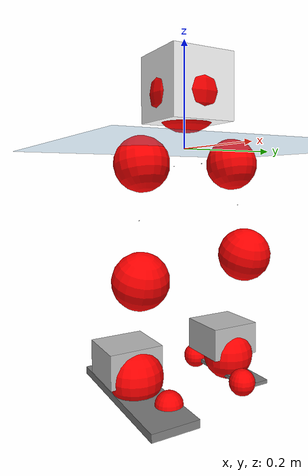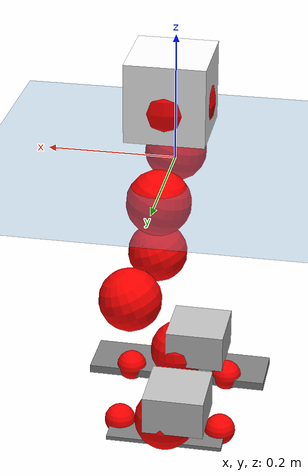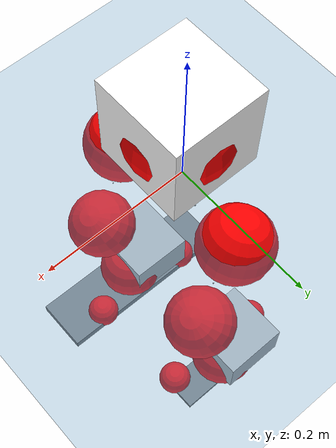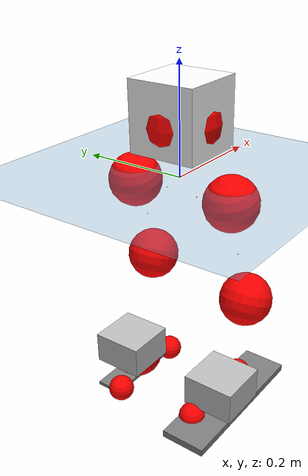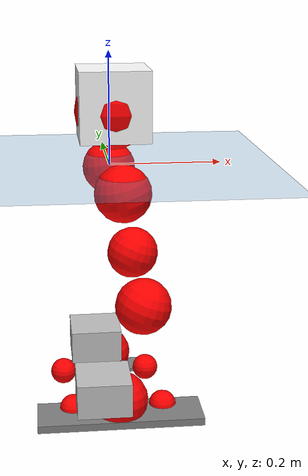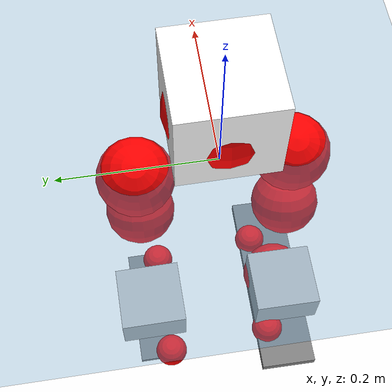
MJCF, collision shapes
<mujoco model="pi_12dof_release_v1">
  <compiler angle="radian" assetdir="assets" balanceinertia="true" inertiafromgeom="false"/>

  <option timestep="0.005" density="1.2" viscosity="2e-05"/>

  <size nkey="1"/>

  <visual>
    <quality shadowsize="8192"/>
    <map shadowclip="0.5"/>
  </visual>

  <default>
    <default class="/">
      <joint armature="0.01" damping="0.01" frictionloss="0.01"/>
      <geom contype="0" conaffinity="0" group="1" solref="-1000 -80"/>
      <site size="0.01 0.005 0.005" group="5"/>
      <general forcelimited="true" biastype="affine" gainprm="20" biasprm="0 -20 -0.5"/>
      <default class="foot">
        <geom size="0.0845 0.036 0.005" type="box" condim="6" group="4" priority="1" friction="0.9 0.2 0.2" solimp="0.015 1 0.005"/>
      </default>
      <default class="reward_collision_sphere">
        <geom group="5" rgba="1 0 0 1"/>
      </default>
    </default>
  </default>

  <asset>
    <texture type="skybox" colorspace="auto" name="//unnamed_texture_0" builtin="gradient" rgb1="0.95 0.95 0.95" rgb2="0.95 0.95 0.95" width="100" height="600"/>
    <texture type="2d" colorspace="auto" name="texplane" builtin="checker" rgb1="0.345 0.575 0.748" rgb2="0.345 0.575 0.748" markrgb="1 1 1" width="512" height="512"/>
    <material name="MatPlane" class="/" texture="texplane" texuniform="true" texrepeat="2 2" specular="0.9"/>
    <mesh name="baselink_1" class="/" file="baselink_1.STL"/>
    <mesh name="r_hip_pitch_link" class="/" file="r_hip_pitch_link.STL"/>
    <mesh name="r_hip_roll_link" class="/" file="r_hip_roll_link.STL"/>
    <mesh name="r_thigh_link" class="/" file="r_thigh_link.STL"/>
    <mesh name="r_calf_link" class="/" file="r_calf_link.STL"/>
    <mesh name="r_ankle_pitch_link" class="/" file="r_ankle_pitch_link.STL"/>
    <mesh name="r_ankle_roll_link" class="/" file="r_ankle_roll_link.STL"/>
    <mesh name="l_hip_pitch_link" class="/" file="l_hip_pitch_link.STL"/>
    <mesh name="l_hip_roll_link" class="/" file="l_hip_roll_link.STL"/>
    <mesh name="l_thigh_link" class="/" file="l_thigh_link.STL"/>
    <mesh name="l_calf_link" class="/" file="l_calf_link.STL"/>
    <mesh name="l_ankle_pitch_link" class="/" file="l_ankle_pitch_link.STL"/>
    <mesh name="l_ankle_roll_link" class="/" file="l_ankle_roll_link.STL"/>
  </asset>

  <worldbody>
    <geom name="floor" class="/" size="100 100 0.125" type="plane" group="0" material="MatPlane"/>
    <light name="toplight_shadow" class="/" pos="0 0 5" dir="0.0990148 0.0990148 -0.990148" type="directional" ambient="0.04 0.04 0.04" diffuse="0.55 0.55 0.55" specular="0.12 0.12 0.12"/>
    <light name="toplight_fill" class="/" pos="0 0 5" dir="0.0990148 0.0990148 -0.990148" type="directional" castshadow="false" ambient="0.04 0.04 0.04" diffuse="0.3 0.3 0.3" specular="0.08 0.08 0.08"/>
    <body name="trunk" pos="0.00748177 -2.89758e-05 0.00492564" quat="0.999995 -0.000294451 -0.00171568 0.00272831">
      <inertial pos="0.00807871 -0.00561484 0.0544588" quat="0.706282 -0.0109786 0.0450492 0.706411" mass="4.11926" diaginertia="0.0211729 0.0234632 0.0128421"/>
      <joint name="//unnamed_joint_0" type="free"/>
      <geom name="//unnamed_geom_1" class="/" type="mesh" density="0" rgba="1 1 1 1" mesh="baselink_1"/>
      <geom name="//unnamed_geom_2" class="/" size="0.0621461 0.0621461 0.0621461" pos="0 0 0.104349" type="box" rgba="1 1 1 1"/>
      <geom name="//unnamed_geom_3" class="reward_collision_sphere" size="0.0683608" pos="0 0 0.0913052"/>
      <site name="imu" class="/" pos="-0.0276048 0.0634954 0.0154943" size="0.0124292"/>
      <camera name="track" class="/" pos="0 -2.42367 0" quat="0.707107 0.707107 0 0" mode="trackcom"/>
      <camera name="ego_camera" class="/" pos="0.090943 0 0.234785" quat="-0.5 -0.5 0.5 0.5"/>
      <body name="r_hip_pitch_link" pos="0.00265695 -0.0282128 -0.038204" quat="0.992289 0.00298348 -0.123794 -0.0052991">
        <inertial pos="0.00613905 -0.0673457 0.0019274" quat="-0.0480988 0.720474 -0.0403939 0.690632" mass="0.614603" diaginertia="0.000245211 0.000224689 0.000253667"/>
        <joint name="r_hip_pitch_joint" class="/" pos="0 0 0" axis="0.0175161 -0.999846 -0.000668822" stiffness="0.0510931" range="-1.7059 1.27588" armature="0.0157658" damping="0.0220973" frictionloss="0.0111623"/>
        <geom name="//unnamed_geom_4" class="/" type="mesh" density="0" rgba="0.75294 0.75294 0.75294 1" mesh="r_hip_pitch_link"/>
        <geom name="//unnamed_geom_5" class="/" size="0.000621461 0.000621461 0.000621461" type="box" rgba="0.75294 0.75294 0.75294 1"/>
        <body name="r_hip_roll_link" pos="0.00619244 -0.0670642 0.00187487" quat="1 -0.000620426 -0.000499095 -0.000454622">
          <inertial pos="-0.00192831 0.0110249 -0.0666124" quat="0.700128 -0.0796782 -0.0762935 0.705444" mass="0.762864" diaginertia="0.000885195 0.000788639 0.000488125"/>
          <joint name="r_hip_roll_joint" class="/" pos="0 0 0" axis="-0.999289 -0.0157072 0.0342653" stiffness="0.028211" range="-0.102376 0.285902" armature="0.0104784" damping="0.020995" frictionloss="0.0140723"/>
          <geom name="//unnamed_geom_6" class="/" type="mesh" density="0" rgba="0.75294 0.75294 0.75294 1" mesh="r_hip_roll_link"/>
          <geom name="//unnamed_geom_7" class="/" size="0.000621461 0.000621461 0.000621461" type="box" rgba="0.75294 0.75294 0.75294 1"/>
          <geom name="//unnamed_geom_8" class="reward_collision_sphere" size="0.0497169"/>
          <body name="r_thigh_link" pos="-0.0130818 -0.0114709 -0.0974861" quat="1 0.000162049 0.000483011 7.63337e-05">
            <inertial pos="0.00243469 0.00694509 -0.0690765" quat="0.735714 0.677283 -0.00334643 0.00140515" mass="0.191338" diaginertia="0.000304201 0.000256452 0.000225308"/>
            <joint name="r_thigh_joint" class="/" pos="0 0 0" axis="-0.0209018 -0.0251943 -0.999464" range="-0.344488 0.516084" armature="0.0119631" damping="0.0417949" frictionloss="0.0203653"/>
            <geom name="//unnamed_geom_9" class="/" type="mesh" density="0" rgba="0.75294 0.75294 0.75294 1" mesh="r_thigh_link"/>
            <geom name="//unnamed_geom_10" class="/" size="0.000621461 0.000621461 0.000621461" type="box" rgba="0.75294 0.75294 0.75294 1"/>
            <body name="r_calf_link" pos="-0.00448674 -0.00816999 -0.102798" quat="0.947687 -0.000116087 0.319202 6.42003e-05">
              <inertial pos="0.00141082 0.00567652 -0.0903848" quat="0.998553 0.0327915 0.0368883 0.0213307" mass="1.32542" diaginertia="0.00843747 0.00748375 0.000561601"/>
              <joint name="r_calf_joint" class="/" pos="0 0 0" axis="0.00357047 -0.999991 0.00226022" stiffness="0.0510469" range="-1.86216 0.653061" armature="0.0180631" damping="0.00581288" frictionloss="0.0114388"/>
              <geom name="//unnamed_geom_11" class="/" type="mesh" density="0" rgba="0.75294 0.75294 0.75294 1" mesh="r_calf_link"/>
              <geom name="//unnamed_geom_12" class="/" size="0.000621461 0.000621461 0.000621461" type="box" rgba="0.75294 0.75294 0.75294 1"/>
              <geom name="//unnamed_geom_13" class="reward_collision_sphere" size="0.0497169"/>
              <body name="r_ankle_pitch_link" pos="-0.00455447 0.00227818 -0.173803" quat="0.980173 0.0010387 -0.198139 0.000335847">
                <inertial pos="0.00338527 0.00409199 0.0114193" quat="-0.0396479 0.678015 -0.0326007 0.733254" mass="0.281963" diaginertia="0.000739013 0.000497813 0.000388458"/>
                <joint name="r_ankle_pitch_joint" class="/" pos="0 0 0" axis="0.0120868 -0.99987 -0.0106437" range="-1.27563 0.258433" armature="0.0124049" damping="0.00802364" frictionloss="0.00637091"/>
                <geom name="//unnamed_geom_14" class="/" type="mesh" density="0" rgba="0.75294 0.75294 0.75294 1" mesh="r_ankle_pitch_link"/>
                <geom name="//unnamed_geom_15" class="/" size="0.048474 0.0497169 0.0310731" type="box" rgba="0.75294 0.75294 0.75294 1"/>
                <body name="r_ankle_roll_link" pos="0.0922094 0.0048424 0.00315319" quat="0.999999 0.000805276 -0.000511614 -0.000350138">
                  <inertial pos="-0.0298223 0.00216627 -0.0319185" quat="0.548551 0.450178 0.443204 0.547725" mass="1.27869" diaginertia="0.00328813 0.00264501 0.00140615"/>
                  <joint name="r_ankle_roll_joint" class="/" pos="0 0 0" axis="-0.998634 0.0272902 0.0445588" range="-0.288571 0.347186" armature="0.0197954" damping="0" frictionloss="0.0158392"/>
                  <geom name="//unnamed_geom_16" class="/" type="mesh" density="0" rgba="0.75294 0.75294 0.75294 1" mesh="r_ankle_roll_link"/>
                  <geom name="//unnamed_geom_17" class="/" type="mesh" rgba="0.75294 0.75294 0.75294 1" mesh="r_ankle_roll_link"/>
                  <geom name="right_foot" class="foot" size="0.149127 0.0426982 0.00687544" pos="-0.0618412 0 -0.0573918"/>
                  <geom name="//unnamed_geom_19" class="reward_collision_sphere" size="0.0497169" pos="-0.0606287 0 -0.0260872"/>
                  <geom name="//unnamed_geom_20" class="reward_collision_sphere" size="0.0248585" pos="0.0181886 0.0242367 -0.0521744"/>
                  <geom name="//unnamed_geom_21" class="reward_collision_sphere" size="0.0248585" pos="-0.145509 0.0242367 -0.0521744"/>
                  <site name="right_foot" class="foot" pos="-0.0618412 0 -0.0573918" size="0.0124292"/>
                </body>
              </body>
            </body>
          </body>
        </body>
      </body>
      <body name="l_hip_pitch_link" pos="0.000218876 0.0328748 -0.0323377" quat="0.992193 0.000941682 -0.124709 -0.000811941">
        <inertial pos="0.00133321 0.0647341 0.0101658" quat="-0.0387207 0.706003 0.0294407 0.706537" mass="0.647225" diaginertia="0.000294612 0.000297351 0.000383119"/>
        <joint name="l_hip_pitch_joint" class="/" pos="0 0 0" axis="0.0285843 0.99959 0.00179509" range="-1.40515 1.77338" armature="0.00709575" damping="0.0211041" frictionloss="0.0125319"/>
        <geom name="//unnamed_geom_22" class="/" type="mesh" density="0" rgba="0.75294 0.75294 0.75294 1" mesh="l_hip_pitch_link"/>
        <geom name="//unnamed_geom_23" class="/" size="0.000621461 0.000621461 0.000621461" type="box" rgba="0.75294 0.75294 0.75294 1"/>
        <body name="l_hip_roll_link" pos="-0.000931366 0.0703622 -0.000140294" quat="0.999999 -0.000796488 0.000510704 -0.000529743">
          <inertial pos="0.00759109 0.000185124 -0.0667307" quat="0.719192 -0.0348144 -0.0592946 0.691401" mass="0.715562" diaginertia="0.000947415 0.000704112 0.000522911"/>
          <joint name="l_hip_roll_joint" class="/" pos="0 0 0" axis="-0.999978 0.00560188 0.00342057" range="-0.277952 -0.0519424" armature="0.0158817" damping="0.0682789" frictionloss="0.0124918"/>
          <geom name="//unnamed_geom_24" class="/" type="mesh" density="0" rgba="0.75294 0.75294 0.75294 1" mesh="l_hip_roll_link"/>
          <geom name="//unnamed_geom_25" class="/" size="0.000621461 0.000621461 0.000621461" type="box" rgba="0.75294 0.75294 0.75294 1"/>
          <geom name="//unnamed_geom_26" class="reward_collision_sphere" size="0.0497169"/>
          <body name="l_thigh_link" pos="0.00600721 -0.00403042 -0.0823794" quat="1 0.00020344 -0.00014984 0.000595065">
            <inertial pos="-0.00569058 0.00468008 -0.0688797" quat="0.674698 0.73681 -0.0433 0.00431013" mass="0.241725" diaginertia="0.000328761 0.000240054 0.000230292"/>
            <joint name="l_thigh_joint" class="/" pos="0 0 0" axis="-0.00745994 0.000480143 -0.999972" stiffness="0.0597194" range="-0.578954 0.404249" armature="0.0128104" damping="0" frictionloss="0.0122815"/>
            <geom name="//unnamed_geom_27" class="/" type="mesh" density="0" rgba="0.75294 0.75294 0.75294 1" mesh="l_thigh_link"/>
            <geom name="//unnamed_geom_28" class="/" size="0.000621461 0.000621461 0.000621461" type="box" rgba="0.75294 0.75294 0.75294 1"/>
            <body name="l_calf_link" pos="-0.00551268 0.00218073 -0.0956767" quat="0.947709 0.00131967 0.319132 0.00102923">
              <inertial pos="0.00111304 -0.00551208 -0.0835444" quat="0.999973 0.00250174 -0.000633254 0.00684317" mass="1.70555" diaginertia="0.0106787 0.0106264 0.000758234"/>
              <joint name="l_calf_joint" class="/" pos="0 0 0" axis="0.00404858 0.99999 0.00200362" stiffness="0.0048947" range="-0.896483 1.44238" armature="0.0122306" damping="0.000863935" frictionloss="0.0106939"/>
              <geom name="//unnamed_geom_29" class="/" type="mesh" density="0" rgba="0.75294 0.75294 0.75294 1" mesh="l_calf_link"/>
              <geom name="//unnamed_geom_30" class="/" size="0.000621461 0.000621461 0.000621461" type="box" rgba="0.75294 0.75294 0.75294 1"/>
              <geom name="//unnamed_geom_31" class="reward_collision_sphere" size="0.0497169"/>
              <body name="l_ankle_pitch_link" pos="-0.000740401 0.00213962 -0.193959" quat="0.980098 0.000116731 -0.198513 -3.94203e-05">
                <inertial pos="0.0119241 -0.00850063 -0.0009272" quat="-0.000796119 0.706448 0.00397386 0.707753" mass="0.417854" diaginertia="0.000848982 0.000639669 0.000447777"/>
                <joint name="l_ankle_pitch_joint" class="/" pos="0 0 0" axis="0.00192222 0.999984 -0.00529346" range="-0.295015 1.31906" armature="0.0173608" damping="0" frictionloss="0.0116803"/>
                <geom name="//unnamed_geom_32" class="/" type="mesh" density="0" rgba="0.75294 0.75294 0.75294 1" mesh="l_ankle_pitch_link"/>
                <geom name="//unnamed_geom_33" class="/" size="0.048474 0.0497169 0.0310731" type="box" rgba="0.75294 0.75294 0.75294 1"/>
                <body name="l_ankle_roll_link" pos="0.0797869 0.00135742 -0.00658518" quat="1 0.000110392 3.87519e-05 -5.20533e-05">
                  <inertial pos="-0.0321445 -0.00192096 -0.020508" quat="0.560184 0.430055 0.43466 0.558854" mass="1.19033" diaginertia="0.00326579 0.00289802 0.00117838"/>
                  <joint name="l_ankle_roll_joint" class="/" pos="0 0 0" axis="-0.999928 0.0096686 -0.00710419" range="-0.207907 0.152048" armature="0.00751131" damping="0" frictionloss="0.0125687"/>
                  <geom name="//unnamed_geom_34" class="/" type="mesh" density="0" rgba="0.75294 0.75294 0.75294 1" mesh="l_ankle_roll_link"/>
                  <geom name="//unnamed_geom_35" class="/" type="mesh" rgba="0.75294 0.75294 0.75294 1" mesh="l_ankle_roll_link"/>
                  <geom name="left_foot" class="foot" size="0.0929933 0.0261259 0.00331545" pos="-0.0618412 0 -0.0573918"/>
                  <geom name="//unnamed_geom_37" class="reward_collision_sphere" size="0.0497169" pos="-0.0606287 0 -0.0260872"/>
                  <geom name="//unnamed_geom_38" class="reward_collision_sphere" size="0.0248585" pos="0.0181886 -0.0242367 -0.0521744"/>
                  <geom name="//unnamed_geom_39" class="reward_collision_sphere" size="0.0248585" pos="-0.145509 -0.0242367 -0.0521744"/>
                  <site name="left_foot" class="foot" pos="-0.0618412 0 -0.0573918" size="0.0124292"/>
                </body>
              </body>
            </body>
          </body>
        </body>
      </body>
    </body>
  </worldbody>

  <contact>
    <pair class="/" geom1="floor" geom2="right_foot" name="//unnamed_contact_1"/>
    <pair class="/" geom1="floor" geom2="left_foot" name="//unnamed_contact_0"/>
  </contact>

  <actuator>
    <general name="r_hip_pitch_joint" class="/" joint="r_hip_pitch_joint" forcerange="-26.2965 26.2965" gainprm="23.9418" biasprm="0 -23.9418 -0.703441"/>
    <general name="r_hip_roll_joint" class="/" joint="r_hip_roll_joint" forcerange="-35.8921 35.8921" gainprm="23.9418" biasprm="0 -23.9418 -0.703441"/>
    <general name="r_thigh_joint" class="/" joint="r_thigh_joint" forcerange="-21.1144 21.1144" gainprm="23.9418" biasprm="0 -23.9418 -0.703441"/>
    <general name="r_calf_joint" class="/" joint="r_calf_joint" forcerange="-28.6082 28.6082" gainprm="23.9418" biasprm="0 -23.9418 -0.703441"/>
    <general name="r_ankle_pitch_joint" class="/" joint="r_ankle_pitch_joint" forcerange="-22.9644 22.9644" gainprm="23.9418" biasprm="0 -23.9418 -0.703441"/>
    <general name="r_ankle_roll_joint" class="/" joint="r_ankle_roll_joint" forcerange="-20.7748 20.7748" gainprm="23.9418" biasprm="0 -23.9418 -0.703441"/>
    <general name="l_hip_pitch_joint" class="/" joint="l_hip_pitch_joint" forcerange="-25.7068 25.7068" gainprm="23.9418" biasprm="0 -23.9418 -0.703441"/>
    <general name="l_hip_roll_joint" class="/" joint="l_hip_roll_joint" forcerange="-16.9079 16.9079" gainprm="23.9418" biasprm="0 -23.9418 -0.703441"/>
    <general name="l_thigh_joint" class="/" joint="l_thigh_joint" forcerange="-36.3889 36.3889" gainprm="23.9418" biasprm="0 -23.9418 -0.703441"/>
    <general name="l_calf_joint" class="/" joint="l_calf_joint" forcerange="-26.9813 26.9813" gainprm="23.9418" biasprm="0 -23.9418 -0.703441"/>
    <general name="l_ankle_pitch_joint" class="/" joint="l_ankle_pitch_joint" forcerange="-20.1058 20.1058" gainprm="23.9418" biasprm="0 -23.9418 -0.703441"/>
    <general name="l_ankle_roll_joint" class="/" joint="l_ankle_roll_joint" forcerange="-13.2931 13.2931" gainprm="23.9418" biasprm="0 -23.9418 -0.703441"/>
  </actuator>

  <sensor>
    <gyro site="imu" name="imu_angular_velocity"/>
    <velocimeter site="imu" name="imu_linear_velocity"/>
    <framelinvel objtype="site" objname="left_foot" name="left_foot_global_linear_velocity"/>
    <framelinvel objtype="site" objname="right_foot" name="right_foot_global_linear_velocity"/>
  </sensor>

  <keyframe>
    <key name="home" qpos="0 0 0.291 1 0 0 0 0.4 0 0 -0.8 0.4 0 -0.4 0 0 0.8 -0.4 0"/>
  </keyframe>
</mujoco>
